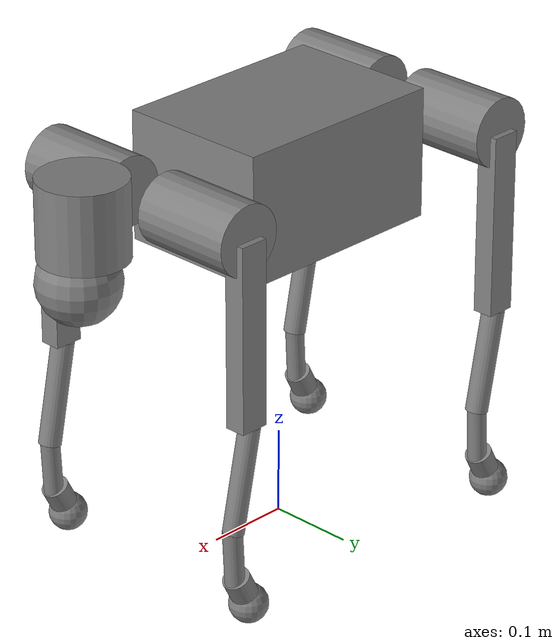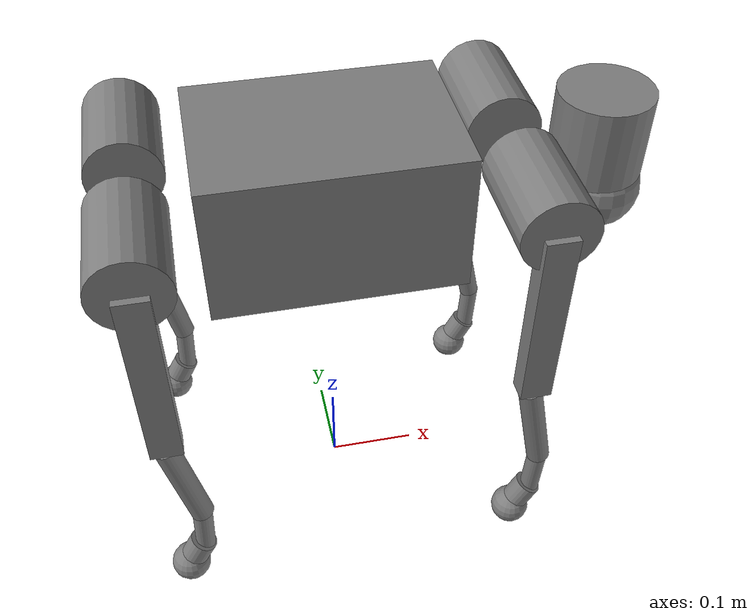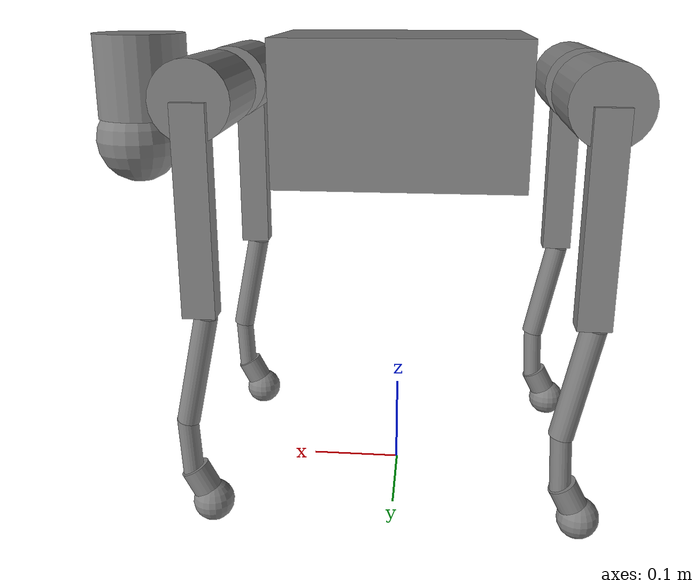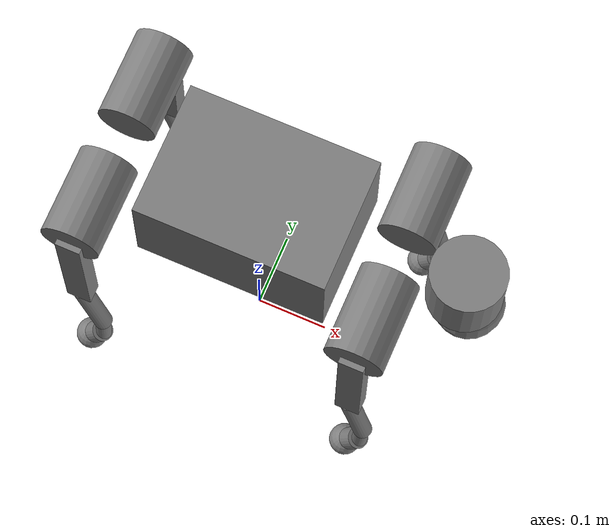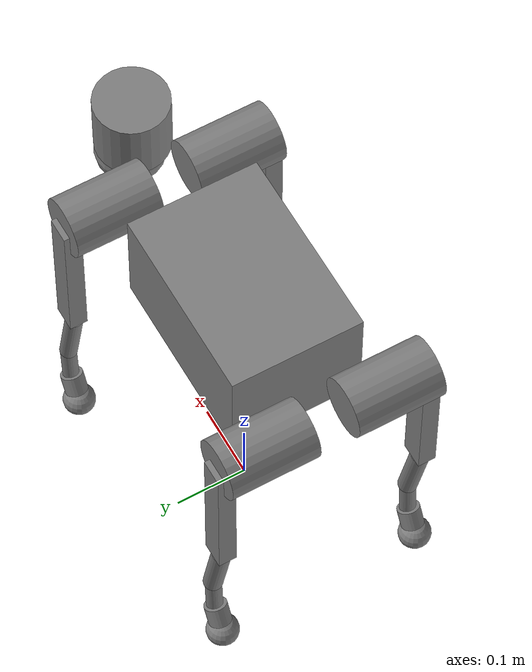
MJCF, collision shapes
<mujoco model="go2">
  <compiler angle="radian" meshdir="meshes" autolimits="true" />

  <option cone="elliptic" impratio="100" />

  <default>
    <default class="go2">
      <geom friction="1.0" margin="0.001" condim="1"/>
      <joint axis="0 1 0" armature="0.01"/>
      <motor ctrlrange="-23.7 23.7"/>
      <default class="abduction">
        <joint axis="1 0 0" range="-1.0472 1.0472"/>
      </default>
      <default class="hip">
        <default class="front_hip">
          <joint range="-1.5708 3.4907"/>
        </default>
        <default class="back_hip">
          <joint range="-0.5236 4.5379"/>
        </default>
      </default>
      <default class="knee">
        <joint range="-2.7227 -0.83776"/>
        <motor ctrlrange="-45.43 45.43"/>
      </default>
      <default class="visual">
        <geom type="mesh" contype="0" conaffinity="0" group="2"/>
      </default>
      <default class="collision">
        <geom group="3"/>
      </default>
    </default>
  </default>

  <asset>
    <material name="metal" rgba=".9 .95 .95 1" />
    <material name="black" rgba="0 0 0 1" />
    <material name="white" rgba="1 1 1 1" />
    <material name="gray" rgba="0.671705 0.692426 0.774270 1" />

    <mesh name="base_visual" file="base.stl" />
    <mesh name="hip" file="hip.stl" />
    <mesh name="thigh" file="thigh.stl" />
    <mesh name="thigh_mirror" file="thigh_mirror.stl" />
    <mesh name="calf" file="calf.stl" />
    <mesh name="calf_mirror" file="calf_mirror.stl" />
    <mesh name="foot" file="foot.stl" />
  </asset>

  <worldbody>
    <body name="base" pos="0 0 0.445" childclass="go2">
      <inertial pos="0.021112 0 -0.005366" quat="-0.000543471 0.713435 -0.00173769 0.700719"
        mass="6.921"
        diaginertia="0.107027 0.0980771 0.0244531" />
      <freejoint />
      <geom mesh="base_visual" material="metal" class="visual" euler="-1.57 0 0"/>
      <geom name="base_collision" size="0.13 0.09 0.075" pos="0 0 -0.02" type="box" class="collision" />
      <body name="Head_upper" pos="0.285 0 0.01">
        <geom name="head_upper_collision" size="0.05 0.045" type="cylinder" class="collision" />
      </body>
      <body name="Head_lower" pos="0.293 0 -0.06">
        <geom name="head_lower_collision" size="0.047" type="sphere" class="collision" />
      </body>
      <site name="imu" pos="-0.02557 0 0.04232" />
      <body name="FL_hip" pos="0.1934 0.0465 0">
        <inertial pos="-0.0054 0.00194 -0.000105" quat="0.497014 0.499245 0.505462 0.498237"
          mass="0.678"
          diaginertia="0.00088403 0.000596003 0.000479967" />
        <joint name="FL_hip_joint" class="abduction" />
        <geom mesh="hip" material="metal" class="visual" euler="-1.57 0 0"/>
        <geom name="FL_hip_collision" size="0.04 0.06" pos="0 0.04 0" quat="1 1 0 0" type="cylinder" class="collision" />
        <body name="FL_thigh" pos="0 0.0955 0">
          <inertial pos="-0.00374 -0.0223 -0.0327" quat="0.829533 0.0847635 -0.0200632 0.551623"
            mass="1.152"
            diaginertia="0.00594973 0.00584149 0.000878787" />
          <joint name="FL_thigh_joint" class="front_hip" />
          <geom mesh="thigh" material="metal" class="visual" euler="-1.57 0 0"/>
          <geom size="0.1065 0.01225 0.017" pos="0 0 -0.1065" quat="0.707107 0 0.707107 0"
            type="box" class="collision" />
          <body name="FL_calf" pos="0 0 -0.213">
            <inertial pos="0.00629595 -0.000622121 -0.141417"
              quat="0.710672 0.00154099 -0.00450087 0.703508"
              mass="0.241352" diaginertia="0.0014901 0.00146356 5.31397e-05" />
            <joint name="FL_calf_joint" class="knee" />
            <geom mesh="calf" material="gray" class="visual" euler="-1.57 0 0"/>
            <geom name="calf_collision" size="0.012 0.06" pos="0.008 0 -0.06" quat="0.994493 0 -0.104807 0"
              type="cylinder" class="collision" />
            <geom name="calflower_collision" size="0.011 0.0325" pos="0.02 0 -0.148" quat="0.999688 0 0.0249974 0"
              type="cylinder" class="collision" />
            <geom name="calflower1_collision" size="0.0155 0.015" pos="0.01 0 -0.188" euler="0 0.48 0"
              type="cylinder" class="collision" />
            <body name="FL_foot" pos="0 0 -0.213">
              <inertial pos="0 0 0" quat="0 0 0 1"
                mass="0.04" diaginertia="9.6e-06 9.6e-06 9.6e-06" />
              <geom pos="0 0 0" mesh="foot" class="visual" material="black" />
              <geom name="FL_foot_collision" size="0.022" pos="-0.002 0 0" type="sphere" class="collision"
                priority="1" condim="6"/>
            </body>
          </body>
        </body>
      </body>
      <body name="FR_hip" pos="0.1934 -0.0465 0">
        <inertial pos="-0.0054 -0.00194 -0.000105" quat="0.498237 0.505462 0.499245 0.497014"
          mass="0.678"
          diaginertia="0.00088403 0.000596003 0.000479967" />
        <joint name="FR_hip_joint" class="abduction" />
        <geom mesh="hip" material="metal" class="visual" euler="1.57 0 0"/>
        <geom name="FR_hip_collision" size="0.04 0.06" pos="0 -0.04 0" quat="0.707107 0.707107 0 0" type="cylinder"
          class="collision" />
        <body name="FR_thigh" pos="0 -0.0955 0">
          <inertial pos="-0.00374 0.0223 -0.0327" quat="0.551623 -0.0200632 0.0847635 0.829533"
            mass="1.152"
            diaginertia="0.00594973 0.00584149 0.000878787" />
          <joint name="FR_thigh_joint" class="front_hip" />
          <geom mesh="thigh_mirror" material="metal" class="visual" euler="-1.57 0 0"/>
          <geom name="FR_thigh_collision" size="0.1065 0.01225 0.017" pos="0 0 -0.1065" quat="0.707107 0 0.707107 0"
            type="box" class="collision" />
          <body name="FR_calf" pos="0 0 -0.213">
            <inertial pos="0.00629595 0.000622121 -0.141417"
              quat="0.703508 -0.00450087 0.00154099 0.710672"
              mass="0.241352" diaginertia="0.0014901 0.00146356 5.31397e-05" />
            <joint name="FR_calf_joint" class="knee" />
            <geom mesh="calf_mirror" material="gray" class="visual" euler="-1.57 0 0"/>
            <geom name="FR_calf_collision" size="0.013 0.06" pos="0.01 0 -0.06" quat="0.995004 0 -0.0998334 0"
              type="cylinder" class="collision" />
            <geom name="FR_calflower_collision" size="0.011 0.0325" pos="0.02 0 -0.148" quat="0.999688 0 0.0249974 0"
              type="cylinder" class="collision" />
            <geom name="FR_calflower1_collision" size="0.0155 0.015" pos="0.01 0 -0.188" euler="0 0.48 0"
              type="cylinder" class="collision" />
            <body name="FR_foot" pos="0 0 -0.213">
              <inertial pos="0 0 0" quat="0 0 0 1"
                mass="0.04" diaginertia="9.6e-06 9.6e-06 9.6e-06" />
              <geom pos="0 0 0" mesh="foot" class="visual" material="black" />
              <geom name="FR_foot_collision" size="0.022" pos="-0.002 0 0" type="sphere" class="collision"
                priority="1" condim="6"/>
            </body>
          </body>
        </body>
      </body>
      <body name="RL_hip" pos="-0.1934 0.0465 0">
        <inertial pos="0.0054 0.00194 -0.000105" quat="0.505462 0.498237 0.497014 0.499245"
          mass="0.678"
          diaginertia="0.00088403 0.000596003 0.000479967" />
        <joint name="RL_hip_joint" class="abduction" />
        <geom mesh="hip" material="metal" class="visual" euler="-1.57 3.1415 0"/>
        <geom name="RL_hip_collision" size="0.04 0.06" pos="0 0.04 0" quat="0.707107 0.707107 0 0" type="cylinder"
          class="collision" />
        <body name="RL_thigh" pos="0 0.0955 0">
          <inertial pos="-0.00374 -0.0223 -0.0327" quat="0.829533 0.0847635 -0.0200632 0.551623"
            mass="1.152"
            diaginertia="0.00594973 0.00584149 0.000878787" />
          <joint name="RL_thigh_joint" class="back_hip" />
          <geom mesh="thigh" material="metal" class="visual" euler="-1.57 0 0"/>
          <geom name="RL_thigh_collision" size="0.1065 0.01225 0.017" pos="0 0 -0.1065" quat="0.707107 0 0.707107 0"
            type="box" class="collision" />
          <body name="RL_calf" pos="0 0 -0.213">
            <inertial pos="0.00629595 -0.000622121 -0.141417"
              quat="0.710672 0.00154099 -0.00450087 0.703508"
              mass="0.241352" diaginertia="0.0014901 0.00146356 5.31397e-05" />
            <joint name="RL_calf_joint" class="knee" />
            <geom mesh="calf" material="gray" class="visual" euler="-1.57 0 0"/>
            <geom name="RL_calf_collision" size="0.013 0.06" pos="0.01 0 -0.06" quat="0.995004 0 -0.0998334 0"
              type="cylinder" class="collision" />
            <geom name="RL_calflower_collision" size="0.011 0.0325" pos="0.02 0 -0.148" quat="0.999688 0 0.0249974 0"
              type="cylinder" class="collision" />
            <geom name="RL_calflower1_collision" size="0.0155 0.015" pos="0.01 0 -0.188" euler="0 0.48 0"
              type="cylinder" class="collision" />
            <body name="RL_foot" pos="0 0 -0.213">
              <inertial pos="0 0 0" quat="0 0 0 1"
                mass="0.04" diaginertia="9.6e-06 9.6e-06 9.6e-06" />
              <geom pos="0 0 0" mesh="foot" class="visual" material="black" />
              <geom name="RL_foot_collision" size="0.022" pos="-0.002 0 0" type="sphere" class="collision"
                priority="1" condim="6"/>
            </body>
          </body>
        </body>
      </body>
      <body name="RR_hip" pos="-0.1934 -0.0465 0">
        <inertial pos="0.0054 -0.00194 -0.000105" quat="0.499245 0.497014 0.498237 0.505462"
          mass="0.678"
          diaginertia="0.00088403 0.000596003 0.000479967" />
        <joint name="RR_hip_joint" class="abduction" />
        <geom mesh="hip" material="metal" class="visual" euler="1.57 3.1415 0"/>
        <geom name="RR_hip_collision" size="0.04 0.06" pos="0 -0.04 0" quat="0.707107 0.707107 0 0" type="cylinder"
          class="collision" />
        <body name="RR_thigh" pos="0 -0.0955 0">
          <inertial pos="-0.00374 0.0223 -0.0327" quat="0.551623 -0.0200632 0.0847635 0.829533"
            mass="1.152"
            diaginertia="0.00594973 0.00584149 0.000878787" />
          <joint name="RR_thigh_joint" class="back_hip" />
          <geom mesh="thigh_mirror" material="metal" class="visual" euler="-1.57 0 0"/>
          <geom name="RR_thigh_collision" size="0.1065 0.01225 0.017" pos="0 0 -0.1065" quat="0.707107 0 0.707107 0"
            type="box" class="collision" />
          <body name="RR_calf" pos="0 0 -0.213">
            <inertial pos="0.00629595 0.000622121 -0.141417"
              quat="0.703508 -0.00450087 0.00154099 0.710672"
              mass="0.241352" diaginertia="0.0014901 0.00146356 5.31397e-05" />
            <joint name="RR_calf_joint" class="knee" />
            <geom mesh="calf_mirror" material="gray" class="visual" euler="-1.57 0 0"/>
            <geom name="RR_calf_collision" size="0.013 0.06" pos="0.01 0 -0.06" quat="0.995004 0 -0.0998334 0"
              type="cylinder" class="collision" />
            <geom name="RR_calflower_collision" size="0.011 0.0325" pos="0.02 0 -0.148" quat="0.999688 0 0.0249974 0"
              type="cylinder" class="collision" />
            <geom name="RR_calflower1_collision" size="0.0155 0.015" pos="0.01 0 -0.188" euler="0 0.48 0"
              type="cylinder" class="collision" />
            <body name="RR_foot" pos="0 0 -0.213">
              <inertial pos="0 0 0" quat="0 0 0 1"
                mass="0.04" diaginertia="9.6e-06 9.6e-06 9.6e-06" />
              <geom pos="0 0 0" mesh="foot" class="visual" material="black" />
              <geom name="RR_foot_collision" size="0.022" pos="-0.002 0 0" type="sphere" class="collision"
                priority="1" condim="6"/>
            </body>
          </body>
        </body>
      </body>
    </body>
  </worldbody>

  <actuator>
    <motor class="abduction" name="FR_hip" joint="FR_hip_joint" />
    <motor class="hip" name="FR_thigh" joint="FR_thigh_joint" />
    <motor class="knee" name="FR_calf" joint="FR_calf_joint" />
    <motor class="abduction" name="FL_hip" joint="FL_hip_joint" />
    <motor class="hip" name="FL_thigh" joint="FL_thigh_joint" />
    <motor class="knee" name="FL_calf" joint="FL_calf_joint" />
    <motor class="abduction" name="RR_hip" joint="RR_hip_joint" />
    <motor class="hip" name="RR_thigh" joint="RR_thigh_joint" />
    <motor class="knee" name="RR_calf" joint="RR_calf_joint" />
    <motor class="abduction" name="RL_hip" joint="RL_hip_joint" />
    <motor class="hip" name="RL_thigh" joint="RL_thigh_joint" />
    <motor class="knee" name="RL_calf" joint="RL_calf_joint" />
  </actuator>

  <sensor>
    <jointpos name="FR_hip_pos" joint="FR_hip_joint" />
    <jointpos name="FR_thigh_pos" joint="FR_thigh_joint" />
    <jointpos name="FR_calf_pos" joint="FR_calf_joint" />
    <jointpos name="FL_hip_pos" joint="FL_hip_joint" />
    <jointpos name="FL_thigh_pos" joint="FL_thigh_joint" />
    <jointpos name="FL_calf_pos" joint="FL_calf_joint" />
    <jointpos name="RR_hip_pos" joint="RR_hip_joint" />
    <jointpos name="RR_thigh_pos" joint="RR_thigh_joint" />
    <jointpos name="RR_calf_pos" joint="RR_calf_joint" />
    <jointpos name="RL_hip_pos" joint="RL_hip_joint" />
    <jointpos name="RL_thigh_pos" joint="RL_thigh_joint" />
    <jointpos name="RL_calf_pos" joint="RL_calf_joint" />

    <jointvel name="FR_hip_vel" joint="FR_hip_joint" />
    <jointvel name="FR_thigh_vel" joint="FR_thigh_joint" />
    <jointvel name="FR_calf_vel" joint="FR_calf_joint" />
    <jointvel name="FL_hip_vel" joint="FL_hip_joint" />
    <jointvel name="FL_thigh_vel" joint="FL_thigh_joint" />
    <jointvel name="FL_calf_vel" joint="FL_calf_joint" />
    <jointvel name="RR_hip_vel" joint="RR_hip_joint" />
    <jointvel name="RR_thigh_vel" joint="RR_thigh_joint" />
    <jointvel name="RR_calf_vel" joint="RR_calf_joint" />
    <jointvel name="RL_hip_vel" joint="RL_hip_joint" />
    <jointvel name="RL_thigh_vel" joint="RL_thigh_joint" />
    <jointvel name="RL_calf_vel" joint="RL_calf_joint" />

    <jointactuatorfrc name="FR_hip_torque" joint="FR_hip_joint" noise="0.01" />
    <jointactuatorfrc name="FR_thigh_torque" joint="FR_thigh_joint" noise="0.01" />
    <jointactuatorfrc name="FR_calf_torque" joint="FR_calf_joint" noise="0.01" />
    <jointactuatorfrc name="FL_hip_torque" joint="FL_hip_joint" noise="0.01" />
    <jointactuatorfrc name="FL_thigh_torque" joint="FL_thigh_joint" noise="0.01" />
    <jointactuatorfrc name="FL_calf_torque" joint="FL_calf_joint" noise="0.01" />
    <jointactuatorfrc name="RR_hip_torque" joint="RR_hip_joint" noise="0.01" />
    <jointactuatorfrc name="RR_thigh_torque" joint="RR_thigh_joint" noise="0.01" />
    <jointactuatorfrc name="RR_calf_torque" joint="RR_calf_joint" noise="0.01" />
    <jointactuatorfrc name="RL_hip_torque" joint="RL_hip_joint" noise="0.01" />
    <jointactuatorfrc name="RL_thigh_torque" joint="RL_thigh_joint" noise="0.01" />
    <jointactuatorfrc name="RL_calf_torque" joint="RL_calf_joint" noise="0.01" />

    <framequat name="imu_quat" objtype="site" objname="imu" />
    <gyro name="imu_gyro" site="imu" />
    <accelerometer name="imu_acc" site="imu" />

    <framepos name="frame_pos" objtype="site" objname="imu" />
    <framelinvel name="frame_vel" objtype="site" objname="imu" />
  </sensor>
</mujoco>
